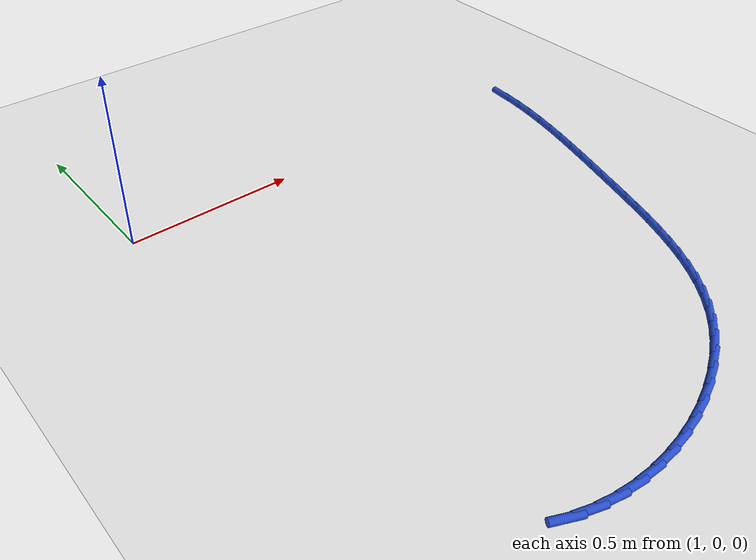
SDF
<sdf version="1.6">
 <world name="default">
  <model name="ground_plane">
   <static>1</static>
   <link name="link">
    <collision name="collision">
     <geometry><plane><normal>0 0 1</normal><size>100 100</size></plane></geometry>
     <surface><friction><ode><mu>100</mu><mu2>50</mu2></ode></friction></surface>
    </collision>
    <visual name="visual">
     <cast_shadows>0</cast_shadows>
     <geometry><plane><normal>0 0 1</normal><size>100 100</size></plane></geometry>
     <material>
      <script><uri>file://media/materials/scripts/gazebo.material</uri><name>Gazebo/WhiteGlow</name></script>
     </material>
    </visual>
   </link>
  </model>
  <model name="line">
   <link name="link_69">
    <pose>2.381156026668595 -0.04906982776683835 0.01 0 1.57 1.474409455700609</pose>
    <collision name="collision">
     <geometry><cylinder><radius>0.01</radius><length>0.08</length></cylinder></geometry>
    </collision>
    <visual name="visual">
     <material>
      <script><name>Gazebo/Blue</name><uri>file://media/materials/scripts/gazebo.material</uri></script>
     </material>
     <geometry><cylinder><radius>0.01</radius><length>0.08</length></cylinder></geometry>
    </visual>
   </link>
   <link name="link_70">
    <pose>2.3758807896892558 -0.10363006390477958 0.01 0 1.57 1.4237569834721724</pose>
    <collision name="collision">
     <geometry><cylinder><radius>0.01</radius><length>0.08</length></cylinder></geometry>
    </collision>
    <visual name="visual">
     <material>
      <script><name>Gazebo/Blue</name><uri>file://media/materials/scripts/gazebo.material</uri></script>
     </material>
     <geometry><cylinder><radius>0.01</radius><length>0.08</length></cylinder></geometry>
    </visual>
   </link>
   <link name="link_71">
    <pose>2.367663330903344 -0.1591128416496759 0.01 0 1.57 1.3811766807937929</pose>
    <collision name="collision">
     <geometry><cylinder><radius>0.01</radius><length>0.08</length></cylinder></geometry>
    </collision>
    <visual name="visual">
     <material>
      <script><name>Gazebo/Blue</name><uri>file://media/materials/scripts/gazebo.material</uri></script>
     </material>
     <geometry><cylinder><radius>0.01</radius><length>0.08</length></cylinder></geometry>
    </visual>
   </link>
   <link name="link_72">
    <pose>2.356876561420177 -0.21531575692499644 0.01 0 1.57 1.345776062920202</pose>
    <collision name="collision">
     <geometry><cylinder><radius>0.01</radius><length>0.08</length></cylinder></geometry>
    </collision>
    <visual name="visual">
     <material>
      <script><name>Gazebo/Blue</name><uri>file://media/materials/scripts/gazebo.material</uri></script>
     </material>
     <geometry><cylinder><radius>0.01</radius><length>0.08</length></cylinder></geometry>
    </visual>
   </link>
   <link name="link_73">
    <pose>2.343893392349072 -0.27203640565421106 0.01 0 1.57 1.3168010446661833</pose>
    <collision name="collision">
     <geometry><cylinder><radius>0.01</radius><length>0.08</length></cylinder></geometry>
    </collision>
    <visual name="visual">
     <material>
      <script><name>Gazebo/Blue</name><uri>file://media/materials/scripts/gazebo.material</uri></script>
     </material>
     <geometry><cylinder><radius>0.01</radius><length>0.08</length></cylinder></geometry>
    </visual>
   </link>
   <link name="link_74">
    <pose>2.329086734799347 -0.32907238376078646 0.01 0 1.57 1.2936460247527384</pose>
    <collision name="collision">
     <geometry><cylinder><radius>0.01</radius><length>0.08</length></cylinder></geometry>
    </collision>
    <visual name="visual">
     <material>
      <script><name>Gazebo/Blue</name><uri>file://media/materials/scripts/gazebo.material</uri></script>
     </material>
     <geometry><cylinder><radius>0.01</radius><length>0.08</length></cylinder></geometry>
    </visual>
   </link>
   <link name="link_75">
    <pose>2.3128294998803196 -0.3862212871681925 0.01 0 1.57 1.2758529715067264</pose>
    <collision name="collision">
     <geometry><cylinder><radius>0.01</radius><length>0.08</length></cylinder></geometry>
    </collision>
    <visual name="visual">
     <material>
      <script><name>Gazebo/Blue</name><uri>file://media/materials/scripts/gazebo.material</uri></script>
     </material>
     <geometry><cylinder><radius>0.01</radius><length>0.08</length></cylinder></geometry>
    </visual>
   </link>
   <link name="link_76">
    <pose>2.295494598701307 -0.4432807117998978 0.01 0 1.57 1.2631073957252397</pose>
    <collision name="collision">
     <geometry><cylinder><radius>0.01</radius><length>0.08</length></cylinder></geometry>
    </collision>
    <visual name="visual">
     <material>
      <script><name>Gazebo/Blue</name><uri>file://media/materials/scripts/gazebo.material</uri></script>
     </material>
     <geometry><cylinder><radius>0.01</radius><length>0.08</length></cylinder></geometry>
    </visual>
   </link>
   <link name="link_77">
    <pose>2.277454942371627 -0.5000482535793713 0.01 0 1.57 1.255235905991164</pose>
    <collision name="collision">
     <geometry><cylinder><radius>0.01</radius><length>0.08</length></cylinder></geometry>
    </collision>
    <visual name="visual">
     <material>
      <script><name>Gazebo/Blue</name><uri>file://media/materials/scripts/gazebo.material</uri></script>
     </material>
     <geometry><cylinder><radius>0.01</radius><length>0.08</length></cylinder></geometry>
    </visual>
   </link>
   <link name="link_78">
    <pose>2.259083442000596 -0.5563215084300823 0.01 0 1.57 1.2521747867328303</pose>
    <collision name="collision">
     <geometry><cylinder><radius>0.01</radius><length>0.08</length></cylinder></geometry>
    </collision>
    <visual name="visual">
     <material>
      <script><name>Gazebo/Blue</name><uri>file://media/materials/scripts/gazebo.material</uri></script>
     </material>
     <geometry><cylinder><radius>0.01</radius><length>0.08</length></cylinder></geometry>
    </visual>
   </link>
   <link name="link_79">
    <pose>2.240750900182173 -0.6118981993489769 0.01 0 1.57 1.250223973457178</pose>
    <collision name="collision">
     <geometry><cylinder><radius>0.01</radius><length>0.08</length></cylinder></geometry>
    </collision>
    <visual name="visual">
     <material>
      <script><name>Gazebo/Blue</name><uri>file://media/materials/scripts/gazebo.material</uri></script>
     </material>
     <geometry><cylinder><radius>0.01</radius><length>0.08</length></cylinder></geometry>
    </visual>
   </link>
   <link name="link_80">
    <pose>2.222591772240053 -0.6665902932272237 0.01 0 1.57 1.2420441650758764</pose>
    <collision name="collision">
     <geometry><cylinder><radius>0.01</radius><length>0.08</length></cylinder></geometry>
    </collision>
    <visual name="visual">
     <material>
      <script><name>Gazebo/Blue</name><uri>file://media/materials/scripts/gazebo.material</uri></script>
     </material>
     <geometry><cylinder><radius>0.01</radius><length>0.08</length></cylinder></geometry>
    </visual>
   </link>
   <link name="link_81">
    <pose>2.2042912628705182 -0.7202368318547563 0.01 0 1.57 1.2264657313856089</pose>
    <collision name="collision">
     <geometry><cylinder><radius>0.01</radius><length>0.08</length></cylinder></geometry>
    </collision>
    <visual name="visual">
     <material>
      <script><name>Gazebo/Blue</name><uri>file://media/materials/scripts/gazebo.material</uri></script>
     </material>
     <geometry><cylinder><radius>0.01</radius><length>0.08</length></cylinder></geometry>
    </visual>
   </link>
   <link name="link_82">
    <pose>2.1854842987482375 -0.7726798871170997 0.01 0 1.57 1.2030818967663814</pose>
    <collision name="collision">
     <geometry><cylinder><radius>0.01</radius><length>0.08</length></cylinder></geometry>
    </collision>
    <visual name="visual">
     <material>
      <script><name>Gazebo/Blue</name><uri>file://media/materials/scripts/gazebo.material</uri></script>
     </material>
     <geometry><cylinder><radius>0.01</radius><length>0.08</length></cylinder></geometry>
    </visual>
   </link>
   <link name="link_83">
    <pose>2.16580580654788 -0.8237615308997753 0.01 0 1.57 1.171472852142143</pose>
    <collision name="collision">
     <geometry><cylinder><radius>0.01</radius><length>0.08</length></cylinder></geometry>
    </collision>
    <visual name="visual">
     <material>
      <script><name>Gazebo/Blue</name><uri>file://media/materials/scripts/gazebo.material</uri></script>
     </material>
     <geometry><cylinder><radius>0.01</radius><length>0.08</length></cylinder></geometry>
    </visual>
   </link>
   <link name="link_84">
    <pose>2.1448907129441164 -0.8733238350883091 0.01 0 1.57 1.1312507025252598</pose>
    <collision name="collision">
     <geometry><cylinder><radius>0.01</radius><length>0.08</length></cylinder></geometry>
    </collision>
    <visual name="visual">
     <material>
      <script><name>Gazebo/Blue</name><uri>file://media/materials/scripts/gazebo.material</uri></script>
     </material>
     <geometry><cylinder><radius>0.01</radius><length>0.08</length></cylinder></geometry>
    </visual>
   </link>
   <link name="link_85">
    <pose>2.1223739446116148 -0.9212088715682243 0.01 0 1.57 1.0821315320911233</pose>
    <collision name="collision">
     <geometry><cylinder><radius>0.01</radius><length>0.08</length></cylinder></geometry>
    </collision>
    <visual name="visual">
     <material>
      <script><name>Gazebo/Blue</name><uri>file://media/materials/scripts/gazebo.material</uri></script>
     </material>
     <geometry><cylinder><radius>0.01</radius><length>0.08</length></cylinder></geometry>
    </visual>
   </link>
   <link name="link_86">
    <pose>2.0978904282250457 -0.9672587122250451 0.01 0 1.57 1.024037200661404</pose>
    <collision name="collision">
     <geometry><cylinder><radius>0.01</radius><length>0.08</length></cylinder></geometry>
    </collision>
    <visual name="visual">
     <material>
      <script><name>Gazebo/Blue</name><uri>file://media/materials/scripts/gazebo.material</uri></script>
     </material>
     <geometry><cylinder><radius>0.01</radius><length>0.08</length></cylinder></geometry>
    </visual>
   </link>
   <link name="link_87">
    <pose>2.0710750904590776 -1.011315428944296 0.01 0 1.57 0.9572210229566452</pose>
    <collision name="collision">
     <geometry><cylinder><radius>0.01</radius><length>0.08</length></cylinder></geometry>
    </collision>
    <visual name="visual">
     <material>
      <script><name>Gazebo/Blue</name><uri>file://media/materials/scripts/gazebo.material</uri></script>
     </material>
     <geometry><cylinder><radius>0.01</radius><length>0.08</length></cylinder></geometry>
    </visual>
   </link>
   <link name="link_88">
    <pose>2.0415628579883798 -1.0532210936114996 0.01 0 1.57 0.8823963661831999</pose>
    <collision name="collision">
     <geometry><cylinder><radius>0.01</radius><length>0.08</length></cylinder></geometry>
    </collision>
    <visual name="visual">
     <material>
      <script><name>Gazebo/Blue</name><uri>file://media/materials/scripts/gazebo.material</uri></script>
     </material>
     <geometry><cylinder><radius>0.01</radius><length>0.08</length></cylinder></geometry>
    </visual>
   </link>
   <link name="link_89">
    <pose>2.0089886574876235 -1.0928177781121808 0.01 0 1.57 0.8008286171803642</pose>
    <collision name="collision">
     <geometry><cylinder><radius>0.01</radius><length>0.08</length></cylinder></geometry>
    </collision>
    <visual name="visual">
     <material>
      <script><name>Gazebo/Blue</name><uri>file://media/materials/scripts/gazebo.material</uri></script>
     </material>
     <geometry><cylinder><radius>0.01</radius><length>0.08</length></cylinder></geometry>
    </visual>
   </link>
   <link name="link_90">
    <pose>1.9729874156314773 -1.1299475543318638 0.01 0 1.57 0.71444885028179</pose>
    <collision name="collision">
     <geometry><cylinder><radius>0.01</radius><length>0.08</length></cylinder></geometry>
    </collision>
    <visual name="visual">
     <material>
      <script><name>Gazebo/Blue</name><uri>file://media/materials/scripts/gazebo.material</uri></script>
     </material>
     <geometry><cylinder><radius>0.01</radius><length>0.08</length></cylinder></geometry>
    </visual>
   </link>
   <link name="link_91">
    <pose>1.9332031402578094 -1.1644522186441424 0.01 0 1.57 0.6291782686108669</pose>
    <collision name="collision">
     <geometry><cylinder><radius>0.01</radius><length>0.08</length></cylinder></geometry>
    </collision>
    <visual name="visual">
     <material>
      <script><name>Gazebo/Blue</name><uri>file://media/materials/scripts/gazebo.material</uri></script>
     </material>
     <geometry><cylinder><radius>0.01</radius><length>0.08</length></cylinder></geometry>
    </visual>
   </link>
   <link name="link_92">
    <pose>1.889636144650913 -1.1961627575297622 0.01 0 1.57 0.5498151848511597</pose>
    <collision name="collision">
     <geometry><cylinder><radius>0.01</radius><length>0.08</length></cylinder></geometry>
    </collision>
    <visual name="visual">
     <material>
      <script><name>Gazebo/Blue</name><uri>file://media/materials/scripts/gazebo.material</uri></script>
     </material>
     <geometry><cylinder><radius>0.01</radius><length>0.08</length></cylinder></geometry>
    </visual>
   </link>
   <link name="link_93">
    <pose>1.8427514992066685 -1.2248960572792333 0.01 0 1.57 0.4751527818619786</pose>
    <collision name="collision">
     <geometry><cylinder><radius>0.01</radius><length>0.08</length></cylinder></geometry>
    </collision>
    <visual name="visual">
     <material>
      <script><name>Gazebo/Blue</name><uri>file://media/materials/scripts/gazebo.material</uri></script>
     </material>
     <geometry><cylinder><radius>0.01</radius><length>0.08</length></cylinder></geometry>
    </visual>
   </link>
   <link name="link_94">
    <pose>1.793045527062539 -1.2504680560112338 0.01 0 1.57 0.4037163862183464</pose>
    <collision name="collision">
     <geometry><cylinder><radius>0.01</radius><length>0.08</length></cylinder></geometry>
    </collision>
    <visual name="visual">
     <material>
      <script><name>Gazebo/Blue</name><uri>file://media/materials/scripts/gazebo.material</uri></script>
     </material>
     <geometry><cylinder><radius>0.01</radius><length>0.08</length></cylinder></geometry>
    </visual>
   </link>
   <link name="link_95">
    <pose>1.7410145513559871 -1.2726946918444426 0.01 0 1.57 0.33413079787318184</pose>
    <collision name="collision">
     <geometry><cylinder><radius>0.01</radius><length>0.08</length></cylinder></geometry>
    </collision>
    <visual name="visual">
     <material>
      <script><name>Gazebo/Blue</name><uri>file://media/materials/scripts/gazebo.material</uri></script>
     </material>
     <geometry><cylinder><radius>0.01</radius><length>0.08</length></cylinder></geometry>
    </visual>
   </link>
   <link name="link_96">
    <pose>1.6871548952244766 -1.291391902897537 0.01 0 1.57 0.2650940763172892</pose>
    <collision name="collision">
     <geometry><cylinder><radius>0.01</radius><length>0.08</length></cylinder></geometry>
    </collision>
    <visual name="visual">
     <material>
      <script><name>Gazebo/Blue</name><uri>file://media/materials/scripts/gazebo.material</uri></script>
     </material>
     <geometry><cylinder><radius>0.01</radius><length>0.08</length></cylinder></geometry>
    </visual>
   </link>
   <link name="link_97">
    <pose>1.6319628818054706 -1.3063756272891958 0.01 0 1.57 0.19534503331969222</pose>
    <collision name="collision">
     <geometry><cylinder><radius>0.01</radius><length>0.08</length></cylinder></geometry>
    </collision>
    <visual name="visual">
     <material>
      <script><name>Gazebo/Blue</name><uri>file://media/materials/scripts/gazebo.material</uri></script>
     </material>
     <geometry><cylinder><radius>0.01</radius><length>0.08</length></cylinder></geometry>
    </visual>
   </link>
   <link name="link_98">
    <pose>1.5759348342364312 -1.3174618031380967 0.01 0 1.57 0.12363168947009534</pose>
    <collision name="collision">
     <geometry><cylinder><radius>0.01</radius><length>0.08</length></cylinder></geometry>
    </collision>
    <visual name="visual">
     <material>
      <script><name>Gazebo/Blue</name><uri>file://media/materials/scripts/gazebo.material</uri></script>
     </material>
     <geometry><cylinder><radius>0.01</radius><length>0.08</length></cylinder></geometry>
    </visual>
   </link>
   <link name="link_99">
    <pose>1.5195670756548216 -1.3244663685629186 0.01 0 1.57 0.0486865839646951</pose>
    <collision name="collision">
     <geometry><cylinder><radius>0.01</radius><length>0.08</length></cylinder></geometry>
    </collision>
    <visual name="visual">
     <material>
      <script><name>Gazebo/Blue</name><uri>file://media/materials/scripts/gazebo.material</uri></script>
     </material>
     <geometry><cylinder><radius>0.01</radius><length>0.08</length></cylinder></geometry>
    </visual>
   </link>
   <link name="link_100">
    <pose>1.4633559291981042 -1.3272052616823398 0.01 0 1.57 -0.030783939397668738</pose>
    <collision name="collision">
     <geometry><cylinder><radius>0.01</radius><length>0.08</length></cylinder></geometry>
    </collision>
    <visual name="visual">
     <material>
      <script><name>Gazebo/Blue</name><uri>file://media/materials/scripts/gazebo.material</uri></script>
     </material>
     <geometry><cylinder><radius>0.01</radius><length>0.08</length></cylinder></geometry>
    </visual>
   </link>
   <link name="link_101">
    <pose>1.407797718003743 -1.3254944206150376 0.01 0 1.57 -0.11608588670211323</pose>
    <collision name="collision">
     <geometry><cylinder><radius>0.01</radius><length>0.08</length></cylinder></geometry>
    </collision>
    <visual name="visual">
     <material>
      <script><name>Gazebo/Blue</name><uri>file://media/materials/scripts/gazebo.material</uri></script>
     </material>
     <geometry><cylinder><radius>0.01</radius><length>0.08</length></cylinder></geometry>
    </visual>
   </link>
   <link name="link_102">
    <pose>1.3533887652092016 -1.3191497834796915 0.01 0 1.57 -0.2084835895266994</pose>
    <collision name="collision">
     <geometry><cylinder><radius>0.01</radius><length>0.08</length></cylinder></geometry>
    </collision>
    <visual name="visual">
     <material>
      <script><name>Gazebo/Blue</name><uri>file://media/materials/scripts/gazebo.material</uri></script>
     </material>
     <geometry><cylinder><radius>0.01</radius><length>0.08</length></cylinder></geometry>
    </visual>
   </link>
   <link name="link_103">
    <pose>1.3006253939519417 -1.3079872883949792 0.01 0 1.57 -0.3090854168939592</pose>
    <collision name="collision">
     <geometry><cylinder><radius>0.01</radius><length>0.08</length></cylinder></geometry>
    </collision>
    <visual name="visual">
     <material>
      <script><name>Gazebo/Blue</name><uri>file://media/materials/scripts/gazebo.material</uri></script>
     </material>
     <geometry><cylinder><radius>0.01</radius><length>0.08</length></cylinder></geometry>
    </visual>
   </link>
   <link name="link_104">
    <pose>1.2500039273694252 -1.291822873479578 0.01 0 1.57 -0.41806988081485147</pose>
    <collision name="collision">
     <geometry><cylinder><radius>0.01</radius><length>0.08</length></cylinder></geometry>
    </collision>
    <visual name="visual">
     <material>
      <script><name>Gazebo/Blue</name><uri>file://media/materials/scripts/gazebo.material</uri></script>
     </material>
     <geometry><cylinder><radius>0.01</radius><length>0.08</length></cylinder></geometry>
    </visual>
   </link>
  </model>
 </world>
</sdf>
